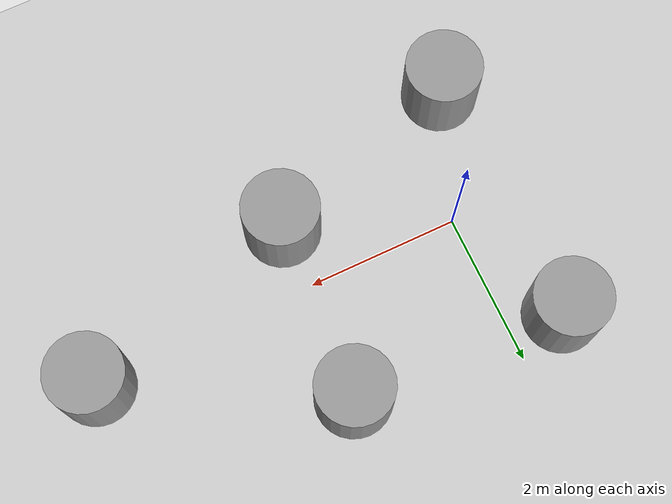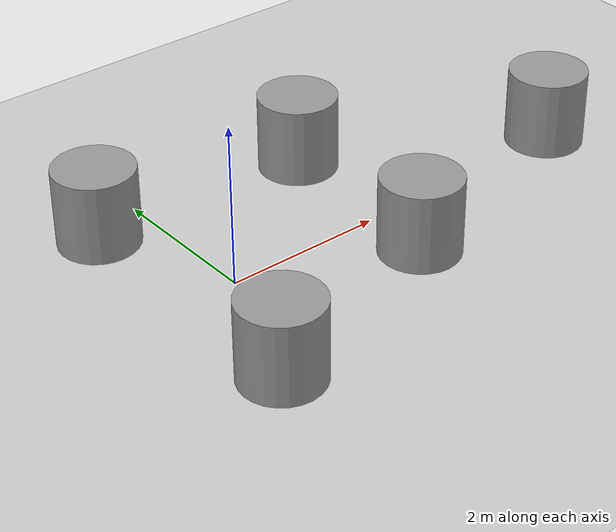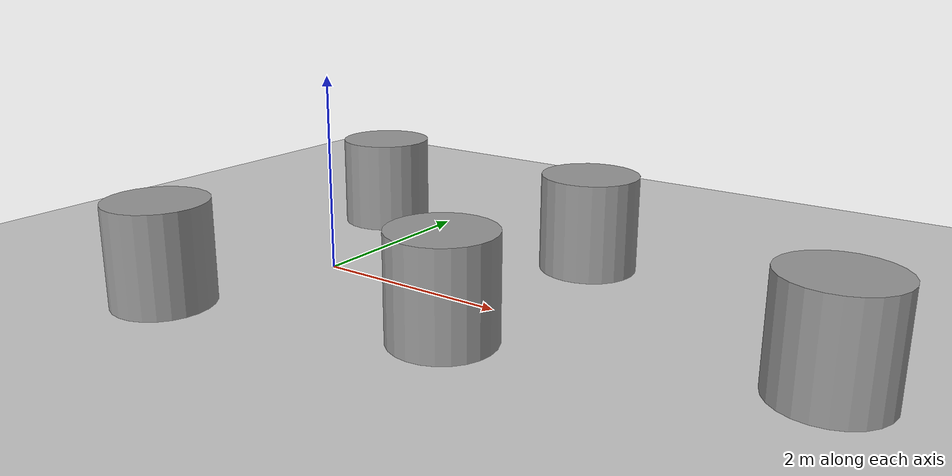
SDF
<sdf version="1.7">
 <world name="default">
  <light name="sun" type="directional">
   <pose>0 0 10 0 -0 0</pose>
   <diffuse>0.8 0.8 0.8 1</diffuse>
   <specular>0.2 0.2 0.2 1</specular>
   <attenuation>
    <range>1000</range>
    <constant>0.9</constant>
    <linear>0.01</linear>
    <quadratic>0.001</quadratic>
   </attenuation>
   <direction>-0.5 0.1 -0.9</direction>
   <spot><inner_angle>0</inner_angle><outer_angle>0</outer_angle><falloff>0</falloff></spot>
  </light>
  <model name="ground_plane">
   <static>1</static>
   <link name="link">
    <collision name="collision">
     <geometry><plane><normal>0 0 1</normal><size>100 100</size></plane></geometry>
     <surface>
      <contact><collide_bitmask>65535</collide_bitmask></contact>
      <friction><ode><mu>100</mu><mu2>50</mu2></ode></friction>
     </surface>
    </collision>
    <visual name="visual">
     <cast_shadows>0</cast_shadows>
     <geometry><plane><normal>0 0 1</normal><size>100 100</size></plane></geometry>
     <material>
      <script><uri>file://media/materials/scripts/gazebo.material</uri><name>Gazebo/Grey</name></script>
     </material>
    </visual>
   </link>
  </model>
  <gravity>0 0 -9.8</gravity>
  <magnetic_field>6e-06 2.3e-05 -4.2e-05</magnetic_field>
  <atmosphere type="adiabatic"/>
  <physics type="ode">
   <max_step_size>0.001</max_step_size>
   <real_time_factor>1</real_time_factor>
   <real_time_update_rate>1000</real_time_update_rate>
  </physics>
  <scene><ambient>0.4 0.4 0.4 1</ambient><background>0.7 0.7 0.7 1</background><shadows>1</shadows></scene>
  <audio><device>default</device></audio>
  <spherical_coordinates>
   <surface_model>EARTH_WGS84</surface_model>
   <latitude_deg>0</latitude_deg>
   <longitude_deg>0</longitude_deg>
   <elevation>0</elevation>
   <heading_deg>0</heading_deg>
  </spherical_coordinates>
  <model name="unit_cylinder">
   <pose>2.15486 1.54543 0.499998 3e-06 -3e-06 0</pose>
   <link name="link">
    <inertial>
     <mass>1</mass>
     <inertia><ixx>0.145833</ixx><ixy>0</ixy><ixz>0</ixz><iyy>0.145833</iyy><iyz>0</iyz><izz>0.125</izz></inertia>
    </inertial>
    <collision name="collision">
     <geometry><cylinder><radius>0.5</radius><length>1</length></cylinder></geometry>
    </collision>
    <visual name="visual">
     <geometry><cylinder><radius>0.5</radius><length>1</length></cylinder></geometry>
     <material>
      <script><name>Gazebo/Grey</name><uri>file://media/materials/scripts/gazebo.material</uri></script>
     </material>
    </visual>
    <enable_wind>1</enable_wind>
   </link>
   <enable_wind>1</enable_wind>
  </model>
  <model name="unit_cylinder_0">
   <pose>-0.68578 1.6908 0.499992 -3e-06 3e-06 0</pose>
   <link name="link">
    <inertial>
     <mass>1</mass>
     <inertia><ixx>0.145833</ixx><ixy>0</ixy><ixz>0</ixz><iyy>0.145833</iyy><iyz>0</iyz><izz>0.125</izz></inertia>
    </inertial>
    <collision name="collision">
     <geometry><cylinder><radius>0.5</radius><length>1</length></cylinder></geometry>
    </collision>
    <visual name="visual">
     <geometry><cylinder><radius>0.5</radius><length>1</length></cylinder></geometry>
     <material>
      <script><name>Gazebo/Grey</name><uri>file://media/materials/scripts/gazebo.material</uri></script>
     </material>
    </visual>
    <enable_wind>1</enable_wind>
   </link>
   <enable_wind>1</enable_wind>
  </model>
  <model name="unit_cylinder_1">
   <pose>2.03869 -0.829828 0.499998 3e-06 -3e-06 0</pose>
   <link name="link">
    <inertial>
     <mass>1</mass>
     <inertia><ixx>0.145833</ixx><ixy>0</ixy><ixz>0</ixz><iyy>0.145833</iyy><iyz>0</iyz><izz>0.125</izz></inertia>
    </inertial>
    <collision name="collision">
     <geometry><cylinder><radius>0.5</radius><length>1</length></cylinder></geometry>
    </collision>
    <visual name="visual">
     <geometry><cylinder><radius>0.5</radius><length>1</length></cylinder></geometry>
     <material>
      <script><name>Gazebo/Grey</name><uri>file://media/materials/scripts/gazebo.material</uri></script>
     </material>
    </visual>
    <enable_wind>1</enable_wind>
   </link>
   <enable_wind>1</enable_wind>
  </model>
  <model name="unit_cylinder_2">
   <pose>-0.628776 -1.65574 0.499992 -3e-06 3e-06 0</pose>
   <link name="link">
    <inertial>
     <mass>1</mass>
     <inertia><ixx>0.145833</ixx><ixy>0</ixy><ixz>0</ixz><iyy>0.145833</iyy><iyz>0</iyz><izz>0.125</izz></inertia>
    </inertial>
    <collision name="collision">
     <geometry><cylinder><radius>0.5</radius><length>1</length></cylinder></geometry>
    </collision>
    <visual name="visual">
     <geometry><cylinder><radius>0.5</radius><length>1</length></cylinder></geometry>
     <material>
      <script><name>Gazebo/Grey</name><uri>file://media/materials/scripts/gazebo.material</uri></script>
     </material>
    </visual>
    <enable_wind>1</enable_wind>
   </link>
   <enable_wind>1</enable_wind>
  </model>
  <model name="unit_cylinder_3">
   <pose>4.98642 0.04523 0.499998 3e-06 -4e-06 0</pose>
   <link name="link">
    <inertial>
     <mass>1</mass>
     <inertia><ixx>0.145833</ixx><ixy>0</ixy><ixz>0</ixz><iyy>0.145833</iyy><iyz>0</iyz><izz>0.125</izz></inertia>
    </inertial>
    <collision name="collision">
     <geometry><cylinder><radius>0.5</radius><length>1</length></cylinder></geometry>
    </collision>
    <visual name="visual">
     <geometry><cylinder><radius>0.5</radius><length>1</length></cylinder></geometry>
     <material>
      <script><name>Gazebo/Grey</name><uri>file://media/materials/scripts/gazebo.material</uri></script>
     </material>
    </visual>
    <enable_wind>1</enable_wind>
   </link>
   <enable_wind>1</enable_wind>
  </model>
 </world>
</sdf>
